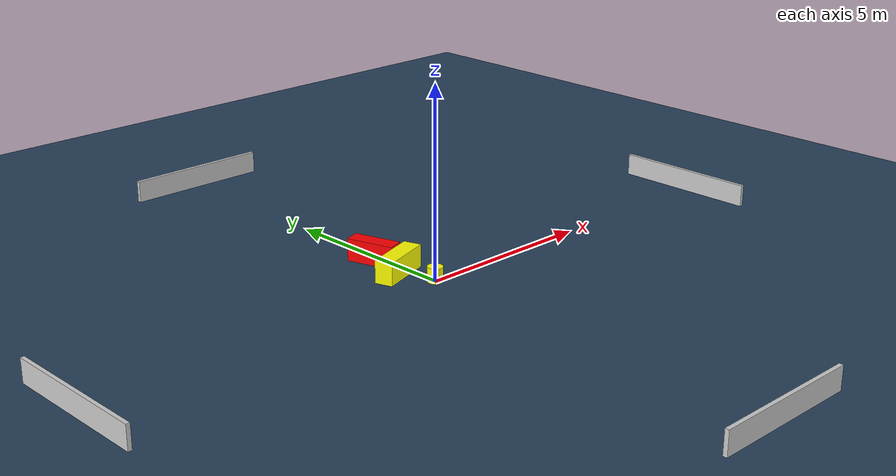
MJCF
<?xml version="1.0" ?>
<mujoco model="generated_environment">
  <option timestep="0.01" integrator="RK4" cone="elliptic"/>
  <default>
    <geom density="1"/>
  </default>
  <asset>
    <texture builtin="gradient" height="3072" name="skybox" rgb1="0.3 0.5 0.7" rgb2="0 0 0" type="skybox" width="512"/>
    <texture builtin="checker" height="300" name="groundplane" rgb1="0.2 0.3 0.4" rgb2="0.1 0.2 0.3" type="2d" width="300"/>
    <material name="groundplane" reflectance="0.2" texrepeat="5 5" texture="groundplane"/>
  </asset>
  <worldbody>
    <light dir="0 0 -1" directional="true" pos="0 0 1.5"/>
    <geom condim="3" friction="0.5 0.005 0.001" material="groundplane" name="floor" pos="0 0 0" size="0 0 0.05" type="plane"/>
    <body name="walls">
      <geom name="wall_1" condim="4" pos="-10.0 0.0 0.3" rgba="0.800000011920929 0.800000011920929 0.800000011920929 1.0" size="0.05 2.0 0.3" type="box"/>
      <geom name="wall_2" condim="4" pos="10.0 0.0 0.3" rgba="0.800000011920929 0.800000011920929 0.800000011920929 1.0" size="0.05 2.0 0.3" type="box"/>
      <geom name="wall_3" condim="4" pos="0.0 -10.0 0.3" rgba="0.800000011920929 0.800000011920929 0.800000011920929 1.0" size="2.0 0.05 0.3" type="box"/>
      <geom name="wall_4" condim="4" pos="0.0 10.0 0.3" rgba="0.800000011920929 0.800000011920929 0.800000011920929 1.0" size="2.0 0.05 0.3" type="box"/>
    </body>
    <body name="robot">
      <joint name="joint_x" type="slide" pos="0 0 0" axis="1 0 0"/>
      <joint name="joint_y" type="slide" pos="0 0 0" axis="0 1 0"/>
      <geom name="robot" type="cylinder" pos="0.0 0.0 0.2" size="0.2 0.2 0.0" mass="5.0" friction="1.0 0.005 0.0001" condim="4" rgba="1.0 1.0 0.0 1.0"/>
    </body>
    <body name="obstacle_1_movable">
      <geom name="obstacle_1_movable" condim="4" pos="-0.36537221491838695 0.9403758971527958 0.3" euler="0 0 288.1912717306881" friction="0.0 0.005 0.001" rgba="1.0 1.0 0.0 1.0" size="0.23751332549128168 0.7330965382674137 0.3" type="box" mass="0.1"/>
      <joint type="free"/>
    </body>
    <body name="obstacle_2_static">
      <geom name="obstacle_2_static" condim="4" pos="-0.2565130516932753 1.975086982630163 0.3" euler="0 0 287.4860009084102" friction="0.0 0.005 0.001" rgba="1.0 0.0 0.0 1.0" size="0.6431560377898276 0.21559416688027386 0.3" type="box"/>
    </body>
  </worldbody>
  <actuator>
    <motor name="actuator_x" joint="joint_x" gear="1" ctrlrange="-1 1"/>
    <motor name="actuator_y" joint="joint_y" gear="1" ctrlrange="-1 1"/>
  </actuator>
</mujoco>
